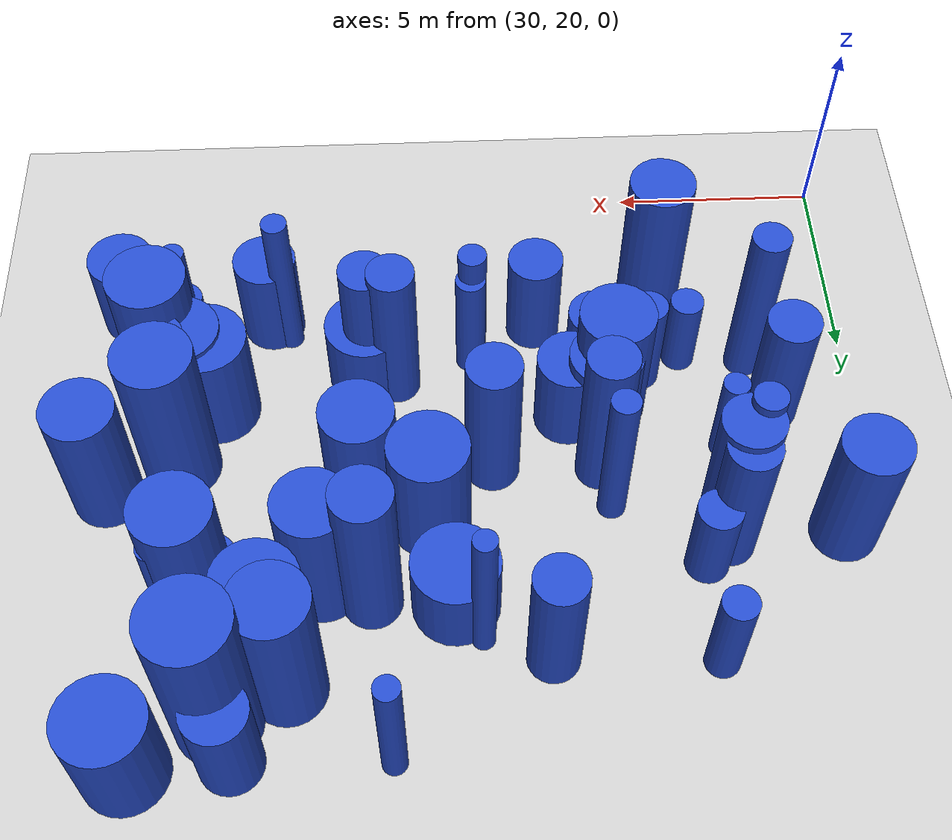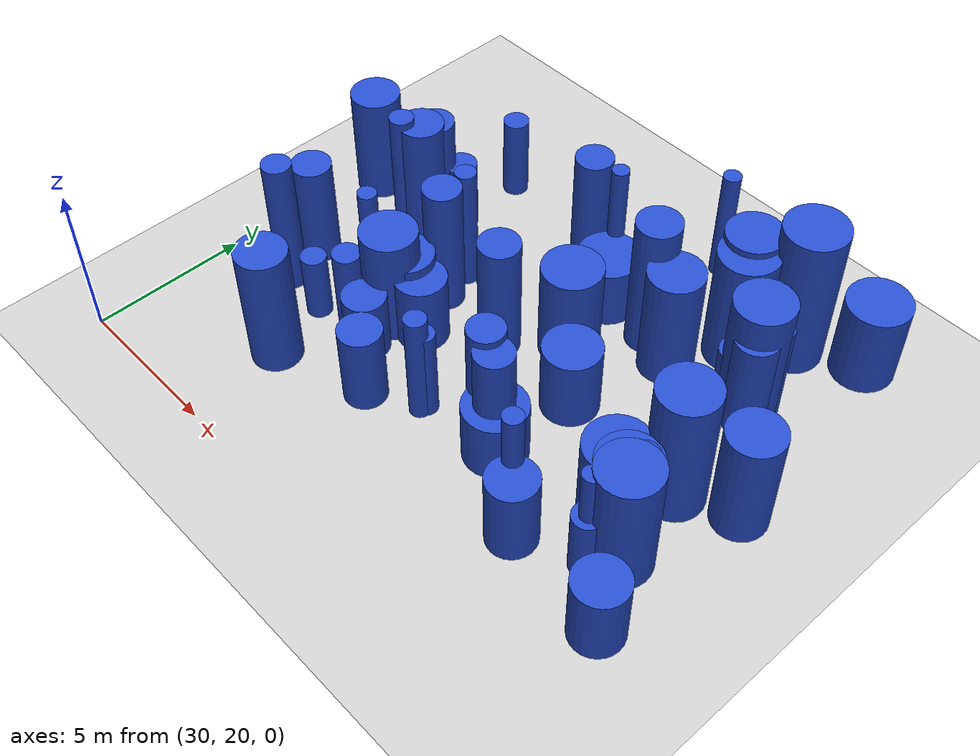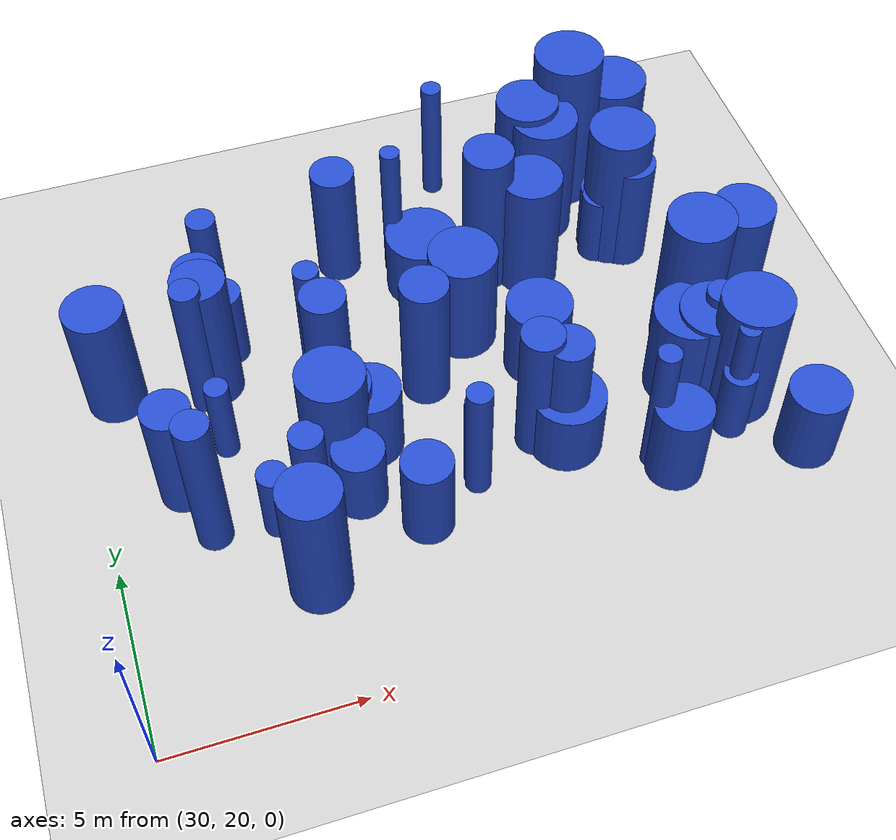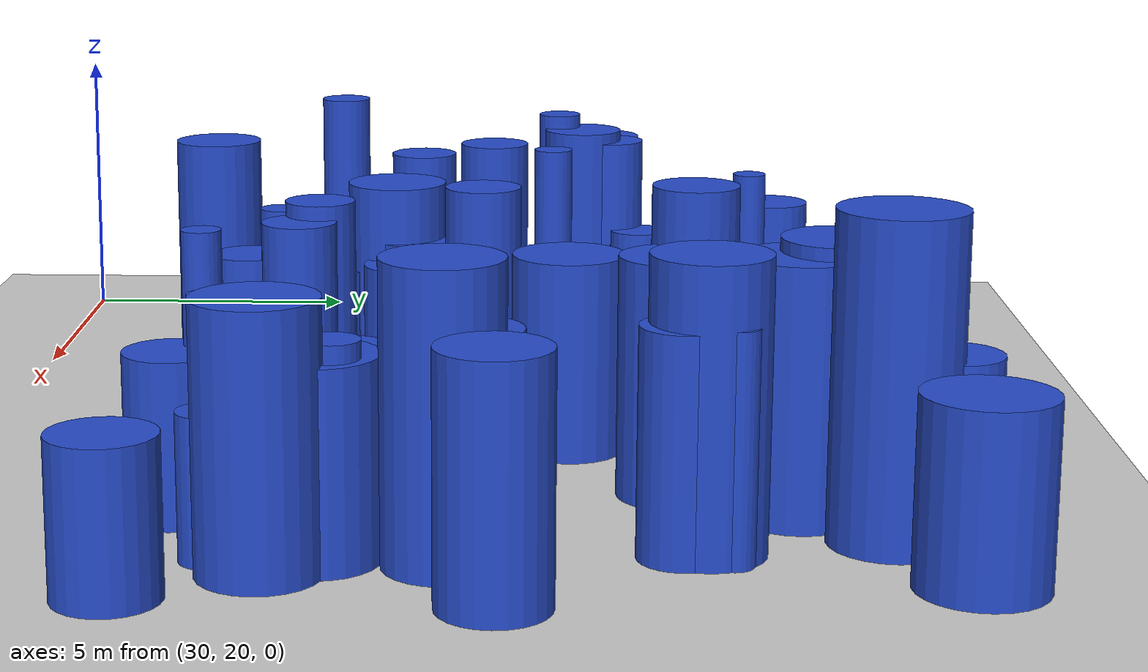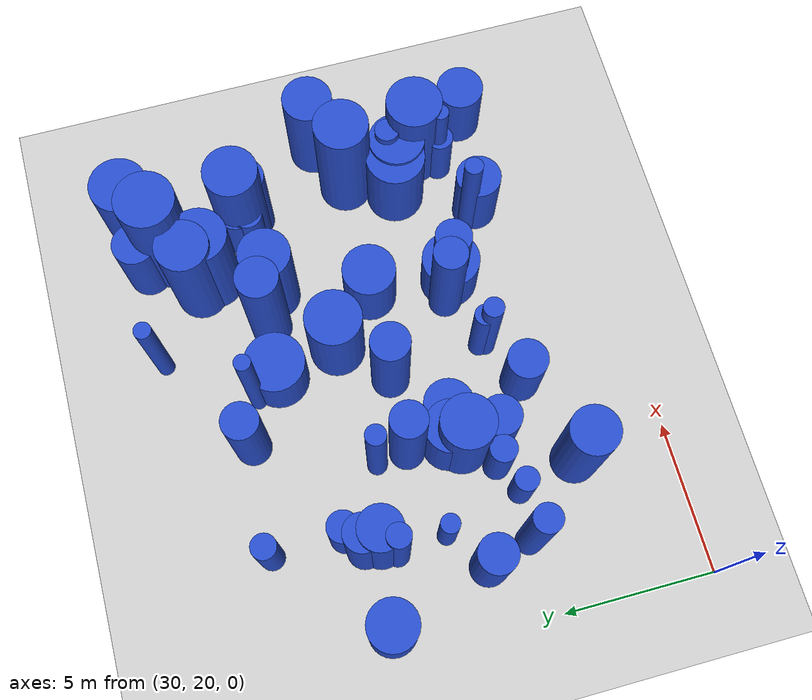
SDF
<sdf version="1.6">
 <world name="default">
  <model name="ground_plane">
   <static>1</static>
   <link name="link">
    <collision name="collision">
     <geometry><plane><normal>0 0 1</normal><size>100 100</size></plane></geometry>
     <surface><friction><ode><mu>100</mu><mu2>50</mu2></ode></friction></surface>
    </collision>
    <visual name="visual">
     <cast_shadows>0</cast_shadows>
     <geometry><plane><normal>0 0 1</normal><size>100 100</size></plane></geometry>
     <material>
      <script><uri>file://media/materials/scripts/gazebo.material</uri><name>Gazebo/Grey</name></script>
     </material>
    </visual>
   </link>
  </model>
  <model name="2">
   <static>0</static>
   <link name="link">
    <inertial>
     <mass>2</mass>
     <inertia><ixx>1.9179</ixx><ixy>0</ixy><ixz>0</ixz><iyy>1.9179</iyy><iyz>0</iyz><izz>0.974837</izz></inertia>
    </inertial>
    <collision name="collision">
     <geometry><cylinder><length>2.92966</length><radius>0.987338</radius></cylinder></geometry>
     <surface><contact><collide_without_contact>1</collide_without_contact></contact></surface>
    </collision>
    <visual name="visual">
     <geometry><cylinder><length>2.92966</length><radius>0.987338</radius></cylinder></geometry>
     <material>
      <script><uri>file://media/materials/scripts/gazebo.material</uri><name>Gazebo/Blue</name></script>
     </material>
    </visual>
    <gravity>0</gravity>
   </link>
   <pose>45.4163 26.3645 1.46483 0 -0 0</pose>
  </model>
  <model name="8">
   <static>0</static>
   <link name="link">
    <inertial>
     <mass>2</mass>
     <inertia><ixx>3.23009</ixx><ixy>0</ixy><ixz>0</ixz><iyy>3.23009</iyy><iyz>0</iyz><izz>0.313267</izz></inertia>
    </inertial>
    <collision name="collision">
     <geometry><cylinder><length>4.29427</length><radius>0.559703</radius></cylinder></geometry>
     <surface><contact><collide_without_contact>1</collide_without_contact></contact></surface>
    </collision>
    <visual name="visual">
     <geometry><cylinder><length>4.29427</length><radius>0.559703</radius></cylinder></geometry>
     <material>
      <script><uri>file://media/materials/scripts/gazebo.material</uri><name>Gazebo/Blue</name></script>
     </material>
    </visual>
    <gravity>0</gravity>
   </link>
   <pose>41.0947 25.7566 2.14713 0 -0 0</pose>
  </model>
  <model name="13">
   <static>0</static>
   <link name="link">
    <inertial>
     <mass>2</mass>
     <inertia><ixx>2.5994</ixx><ixy>0</ixy><ixz>0</ixz><iyy>2.5994</iyy><iyz>0</iyz><izz>0.0800748</izz></inertia>
    </inertial>
    <collision name="collision">
     <geometry><cylinder><length>3.91869</length><radius>0.282975</radius></cylinder></geometry>
     <surface><contact><collide_without_contact>1</collide_without_contact></contact></surface>
    </collision>
    <visual name="visual">
     <geometry><cylinder><length>3.91869</length><radius>0.282975</radius></cylinder></geometry>
     <material>
      <script><uri>file://media/materials/scripts/gazebo.material</uri><name>Gazebo/Blue</name></script>
     </material>
    </visual>
    <gravity>0</gravity>
   </link>
   <pose>46.0991 24.6597 1.95935 0 -0 0</pose>
  </model>
  <model name="27">
   <static>0</static>
   <link name="link">
    <inertial>
     <mass>2</mass>
     <inertia><ixx>2.24556</ixx><ixy>0</ixy><ixz>0</ixz><iyy>2.24556</iyy><iyz>0</iyz><izz>0.865007</izz></inertia>
    </inertial>
    <collision name="collision">
     <geometry><cylinder><length>3.29823</length><radius>0.930057</radius></cylinder></geometry>
     <surface><contact><collide_without_contact>1</collide_without_contact></contact></surface>
    </collision>
    <visual name="visual">
     <geometry><cylinder><length>3.29823</length><radius>0.930057</radius></cylinder></geometry>
     <material>
      <script><uri>file://media/materials/scripts/gazebo.material</uri><name>Gazebo/Blue</name></script>
     </material>
    </visual>
    <gravity>0</gravity>
   </link>
   <pose>40.362 29.7446 1.64912 0 -0 0</pose>
  </model>
  <model name="31">
   <static>0</static>
   <link name="link">
    <inertial>
     <mass>2</mass>
     <inertia><ixx>2.46305</ixx><ixy>0</ixy><ixz>0</ixz><iyy>2.46305</iyy><iyz>0</iyz><izz>0.114316</izz></inertia>
    </inertial>
    <collision name="collision">
     <geometry><cylinder><length>3.79939</length><radius>0.338106</radius></cylinder></geometry>
     <surface><contact><collide_without_contact>1</collide_without_contact></contact></surface>
    </collision>
    <visual name="visual">
     <geometry><cylinder><length>3.79939</length><radius>0.338106</radius></cylinder></geometry>
     <material>
      <script><uri>file://media/materials/scripts/gazebo.material</uri><name>Gazebo/Blue</name></script>
     </material>
    </visual>
    <gravity>0</gravity>
   </link>
   <pose>39.2114 24.8963 1.89969 0 -0 0</pose>
  </model>
  <model name="49">
   <static>0</static>
   <link name="link">
    <inertial>
     <mass>2</mass>
     <inertia><ixx>1.4206</ixx><ixy>0</ixy><ixz>0</ixz><iyy>1.4206</iyy><iyz>0</iyz><izz>0.438407</izz></inertia>
    </inertial>
    <collision name="collision">
     <geometry><cylinder><length>2.68485</length><radius>0.662123</radius></cylinder></geometry>
     <surface><contact><collide_without_contact>1</collide_without_contact></contact></surface>
    </collision>
    <visual name="visual">
     <geometry><cylinder><length>2.68485</length><radius>0.662123</radius></cylinder></geometry>
     <material>
      <script><uri>file://media/materials/scripts/gazebo.material</uri><name>Gazebo/Blue</name></script>
     </material>
    </visual>
    <gravity>0</gravity>
   </link>
   <pose>37.6585 24.1439 1.34242 0 -0 0</pose>
  </model>
  <model name="50">
   <static>0</static>
   <link name="link">
    <inertial>
     <mass>2</mass>
     <inertia><ixx>3.40213</ixx><ixy>0</ixy><ixz>0</ixz><iyy>3.40213</iyy><iyz>0</iyz><izz>0.758243</izz></inertia>
    </inertial>
    <collision name="collision">
     <geometry><cylinder><length>4.25888</length><radius>0.870771</radius></cylinder></geometry>
     <surface><contact><collide_without_contact>1</collide_without_contact></contact></surface>
    </collision>
    <visual name="visual">
     <geometry><cylinder><length>4.25888</length><radius>0.870771</radius></cylinder></geometry>
     <material>
      <script><uri>file://media/materials/scripts/gazebo.material</uri><name>Gazebo/Blue</name></script>
     </material>
    </visual>
    <gravity>0</gravity>
   </link>
   <pose>43.5227 33.7385 2.12944 0 -0 0</pose>
  </model>
  <model name="61">
   <static>0</static>
   <link name="link">
    <inertial>
     <mass>2</mass>
     <inertia><ixx>1.26514</ixx><ixy>0</ixy><ixz>0</ixz><iyy>1.26514</iyy><iyz>0</iyz><izz>0.651756</izz></inertia>
    </inertial>
    <collision name="collision">
     <geometry><cylinder><length>2.37394</length><radius>0.807314</radius></cylinder></geometry>
     <surface><contact><collide_without_contact>1</collide_without_contact></contact></surface>
    </collision>
    <visual name="visual">
     <geometry><cylinder><length>2.37394</length><radius>0.807314</radius></cylinder></geometry>
     <material>
      <script><uri>file://media/materials/scripts/gazebo.material</uri><name>Gazebo/Blue</name></script>
     </material>
    </visual>
    <gravity>0</gravity>
   </link>
   <pose>36.9963 26.9063 1.18697 0 -0 0</pose>
  </model>
  <model name="62">
   <static>0</static>
   <link name="link">
    <inertial>
     <mass>2</mass>
     <inertia><ixx>4.60937</ixx><ixy>0</ixy><ixz>0</ixz><iyy>4.60937</iyy><iyz>0</iyz><izz>0.935499</izz></inertia>
    </inertial>
    <collision name="collision">
     <geometry><cylinder><length>4.98495</length><radius>0.967212</radius></cylinder></geometry>
     <surface><contact><collide_without_contact>1</collide_without_contact></contact></surface>
    </collision>
    <visual name="visual">
     <geometry><cylinder><length>4.98495</length><radius>0.967212</radius></cylinder></geometry>
     <material>
      <script><uri>file://media/materials/scripts/gazebo.material</uri><name>Gazebo/Blue</name></script>
     </material>
    </visual>
    <gravity>0</gravity>
   </link>
   <pose>44.9759 34.4635 2.49248 0 -0 0</pose>
  </model>
  <model name="68">
   <static>0</static>
   <link name="link">
    <inertial>
     <mass>2</mass>
     <inertia>
      <ixx>3.19713</ixx>
      <ixy>0</ixy>
      <ixz>0</ixz>
      <iyy>3.19713</iyy>
      <iyz>0</iyz>
      <izz>0.0925744</izz>
     </inertia>
    </inertial>
    <collision name="collision">
     <geometry><cylinder><length>4.34799</length><radius>0.30426</radius></cylinder></geometry>
     <surface><contact><collide_without_contact>1</collide_without_contact></contact></surface>
    </collision>
    <visual name="visual">
     <geometry><cylinder><length>4.34799</length><radius>0.30426</radius></cylinder></geometry>
     <material>
      <script><uri>file://media/materials/scripts/gazebo.material</uri><name>Gazebo/Blue</name></script>
     </material>
    </visual>
    <gravity>0</gravity>
   </link>
   <pose>43.7363 24.2398 2.174 0 -0 0</pose>
  </model>
  <model name="69">
   <static>0</static>
   <link name="link">
    <inertial>
     <mass>2</mass>
     <inertia>
      <ixx>3.33102</ixx>
      <ixy>0</ixy>
      <ixz>0</ixz>
      <iyy>3.33102</iyy>
      <iyz>0</iyz>
      <izz>0.0721919</izz>
     </inertia>
    </inertial>
    <collision name="collision">
     <geometry><cylinder><length>4.4463</length><radius>0.268686</radius></cylinder></geometry>
     <surface><contact><collide_without_contact>1</collide_without_contact></contact></surface>
    </collision>
    <visual name="visual">
     <geometry><cylinder><length>4.4463</length><radius>0.268686</radius></cylinder></geometry>
     <material>
      <script><uri>file://media/materials/scripts/gazebo.material</uri><name>Gazebo/Blue</name></script>
     </material>
    </visual>
    <gravity>0</gravity>
   </link>
   <pose>39.2791 32.7325 2.22315 0 -0 0</pose>
  </model>
  <model name="78">
   <static>0</static>
   <link name="link">
    <inertial>
     <mass>2</mass>
     <inertia><ixx>1.37906</ixx><ixy>0</ixy><ixz>0</ixz><iyy>1.37906</iyy><iyz>0</iyz><izz>0.787408</izz></inertia>
    </inertial>
    <collision name="collision">
     <geometry><cylinder><length>2.43149</length><radius>0.88736</radius></cylinder></geometry>
     <surface><contact><collide_without_contact>1</collide_without_contact></contact></surface>
    </collision>
    <visual name="visual">
     <geometry><cylinder><length>2.43149</length><radius>0.88736</radius></cylinder></geometry>
     <material>
      <script><uri>file://media/materials/scripts/gazebo.material</uri><name>Gazebo/Blue</name></script>
     </material>
    </visual>
    <gravity>0</gravity>
   </link>
   <pose>41.9661 28.1877 1.21574 0 -0 0</pose>
  </model>
  <model name="83">
   <static>0</static>
   <link name="link">
    <inertial>
     <mass>2</mass>
     <inertia>
      <ixx>1.18192</ixx>
      <ixy>0</ixy>
      <ixz>0</ixz>
      <iyy>1.18192</iyy>
      <iyz>0</iyz>
      <izz>0.0996263</izz>
     </inertia>
    </inertial>
    <collision name="collision">
     <geometry><cylinder><length>2.60627</length><radius>0.315636</radius></cylinder></geometry>
     <surface><contact><collide_without_contact>1</collide_without_contact></contact></surface>
    </collision>
    <visual name="visual">
     <geometry><cylinder><length>2.60627</length><radius>0.315636</radius></cylinder></geometry>
     <material>
      <script><uri>file://media/materials/scripts/gazebo.material</uri><name>Gazebo/Blue</name></script>
     </material>
    </visual>
    <gravity>0</gravity>
   </link>
   <pose>33.3435 27.9145 1.30313 0 -0 0</pose>
  </model>
  <model name="92">
   <static>0</static>
   <link name="link">
    <inertial>
     <mass>2</mass>
     <inertia><ixx>1.69072</ixx><ixy>0</ixy><ixz>0</ixz><iyy>1.69072</iyy><iyz>0</iyz><izz>0.127981</izz></inertia>
    </inertial>
    <collision name="collision">
     <geometry><cylinder><length>3.12416</length><radius>0.357744</radius></cylinder></geometry>
     <surface><contact><collide_without_contact>1</collide_without_contact></contact></surface>
    </collision>
    <visual name="visual">
     <geometry><cylinder><length>3.12416</length><radius>0.357744</radius></cylinder></geometry>
     <material>
      <script><uri>file://media/materials/scripts/gazebo.material</uri><name>Gazebo/Blue</name></script>
     </material>
    </visual>
    <gravity>0</gravity>
   </link>
   <pose>39.2593 25.0883 1.56208 0 -0 0</pose>
  </model>
  <model name="97">
   <static>0</static>
   <link name="link">
    <inertial>
     <mass>2</mass>
     <inertia><ixx>2.78191</ixx><ixy>0</ixy><ixz>0</ixz><iyy>2.78191</iyy><iyz>0</iyz><izz>0.727916</izz></inertia>
    </inertial>
    <collision name="collision">
     <geometry><cylinder><length>3.8089</length><radius>0.85318</radius></cylinder></geometry>
     <surface><contact><collide_without_contact>1</collide_without_contact></contact></surface>
    </collision>
    <visual name="visual">
     <geometry><cylinder><length>3.8089</length><radius>0.85318</radius></cylinder></geometry>
     <material>
      <script><uri>file://media/materials/scripts/gazebo.material</uri><name>Gazebo/Blue</name></script>
     </material>
    </visual>
    <gravity>0</gravity>
   </link>
   <pose>42.8043 31.3367 1.90445 0 -0 0</pose>
  </model>
  <model name="100">
   <static>0</static>
   <link name="link">
    <inertial>
     <mass>2</mass>
     <inertia><ixx>3.16988</ixx><ixy>0</ixy><ixz>0</ixz><iyy>3.16988</iyy><iyz>0</iyz><izz>0.863339</izz></inertia>
    </inertial>
    <collision name="collision">
     <geometry><cylinder><length>4.0533</length><radius>0.92916</radius></cylinder></geometry>
     <surface><contact><collide_without_contact>1</collide_without_contact></contact></surface>
    </collision>
    <visual name="visual">
     <geometry><cylinder><length>4.0533</length><radius>0.92916</radius></cylinder></geometry>
     <material>
      <script><uri>file://media/materials/scripts/gazebo.material</uri><name>Gazebo/Blue</name></script>
     </material>
    </visual>
    <gravity>0</gravity>
   </link>
   <pose>43.8295 33.189 2.02665 0 -0 0</pose>
  </model>
  <model name="110">
   <static>0</static>
   <link name="link">
    <inertial>
     <mass>2</mass>
     <inertia>
      <ixx>0.975709</ixx>
      <ixy>0</ixy>
      <ixz>0</ixz>
      <iyy>0.975709</iyy>
      <iyz>0</iyz>
      <izz>0.463209</izz>
     </inertia>
    </inertial>
    <collision name="collision">
     <geometry><cylinder><length>2.11297</length><radius>0.680595</radius></cylinder></geometry>
     <surface><contact><collide_without_contact>1</collide_without_contact></contact></surface>
    </collision>
    <visual name="visual">
     <geometry><cylinder><length>2.11297</length><radius>0.680595</radius></cylinder></geometry>
     <material>
      <script><uri>file://media/materials/scripts/gazebo.material</uri><name>Gazebo/Blue</name></script>
     </material>
    </visual>
    <gravity>0</gravity>
   </link>
   <pose>36.2589 25.3789 1.05648 0 -0 0</pose>
  </model>
  <model name="122">
   <static>0</static>
   <link name="link">
    <inertial>
     <mass>2</mass>
     <inertia><ixx>1.78541</ixx><ixy>0</ixy><ixz>0</ixz><iyy>1.78541</iyy><iyz>0</iyz><izz>0.954322</izz></inertia>
    </inertial>
    <collision name="collision">
     <geometry><cylinder><length>2.8017</length><radius>0.976894</radius></cylinder></geometry>
     <surface><contact><collide_without_contact>1</collide_without_contact></contact></surface>
    </collision>
    <visual name="visual">
     <geometry><cylinder><length>2.8017</length><radius>0.976894</radius></cylinder></geometry>
     <material>
      <script><uri>file://media/materials/scripts/gazebo.material</uri><name>Gazebo/Blue</name></script>
     </material>
    </visual>
    <gravity>0</gravity>
   </link>
   <pose>46.8718 35.4481 1.40085 0 -0 0</pose>
  </model>
  <model name="168">
   <static>0</static>
   <link name="link">
    <inertial>
     <mass>2</mass>
     <inertia><ixx>2.93272</ixx><ixy>0</ixy><ixz>0</ixz><iyy>2.93272</iyy><iyz>0</iyz><izz>0.354754</izz></inertia>
    </inertial>
    <collision name="collision">
     <geometry><cylinder><length>4.06596</length><radius>0.595613</radius></cylinder></geometry>
     <surface><contact><collide_without_contact>1</collide_without_contact></contact></surface>
    </collision>
    <visual name="visual">
     <geometry><cylinder><length>4.06596</length><radius>0.595613</radius></cylinder></geometry>
     <material>
      <script><uri>file://media/materials/scripts/gazebo.material</uri><name>Gazebo/Blue</name></script>
     </material>
    </visual>
    <gravity>0</gravity>
   </link>
   <pose>41.704 25.48 2.03298 0 -0 0</pose>
  </model>
  <model name="188">
   <static>0</static>
   <link name="link">
    <inertial>
     <mass>2</mass>
     <inertia><ixx>2.07768</ixx><ixy>0</ixy><ixz>0</ixz><iyy>2.07768</iyy><iyz>0</iyz><izz>0.104098</izz></inertia>
    </inertial>
    <collision name="collision">
     <geometry><cylinder><length>3.48623</length><radius>0.322642</radius></cylinder></geometry>
     <surface><contact><collide_without_contact>1</collide_without_contact></contact></surface>
    </collision>
    <visual name="visual">
     <geometry><cylinder><length>3.48623</length><radius>0.322642</radius></cylinder></geometry>
     <material>
      <script><uri>file://media/materials/scripts/gazebo.material</uri><name>Gazebo/Blue</name></script>
     </material>
    </visual>
    <gravity>0</gravity>
   </link>
   <pose>46.0382 32.0862 1.74311 0 -0 0</pose>
  </model>
  <model name="209">
   <static>0</static>
   <link name="link">
    <inertial>
     <mass>2</mass>
     <inertia><ixx>3.66777</ixx><ixy>0</ixy><ixz>0</ixz><iyy>3.66777</iyy><iyz>0</iyz><izz>0.792332</izz></inertia>
    </inertial>
    <collision name="collision">
     <geometry><cylinder><length>4.43054</length><radius>0.890131</radius></cylinder></geometry>
     <surface><contact><collide_without_contact>1</collide_without_contact></contact></surface>
    </collision>
    <visual name="visual">
     <geometry><cylinder><length>4.43054</length><radius>0.890131</radius></cylinder></geometry>
     <material>
      <script><uri>file://media/materials/scripts/gazebo.material</uri><name>Gazebo/Blue</name></script>
     </material>
    </visual>
    <gravity>0</gravity>
   </link>
   <pose>45.5248 31.7344 2.21527 0 -0 0</pose>
  </model>
  <model name="210">
   <static>0</static>
   <link name="link">
    <inertial>
     <mass>2</mass>
     <inertia><ixx>2.45701</ixx><ixy>0</ixy><ixz>0</ixz><iyy>2.45701</iyy><iyz>0</iyz><izz>0.364356</izz></inertia>
    </inertial>
    <collision name="collision">
     <geometry><cylinder><length>3.69446</length><radius>0.603619</radius></cylinder></geometry>
     <surface><contact><collide_without_contact>1</collide_without_contact></contact></surface>
    </collision>
    <visual name="visual">
     <geometry><cylinder><length>3.69446</length><radius>0.603619</radius></cylinder></geometry>
     <material>
      <script><uri>file://media/materials/scripts/gazebo.material</uri><name>Gazebo/Blue</name></script>
     </material>
    </visual>
    <gravity>0</gravity>
   </link>
   <pose>37.7773 33.2498 1.84723 0 -0 0</pose>
  </model>
  <model name="244">
   <static>0</static>
   <link name="link">
    <inertial>
     <mass>2</mass>
     <inertia>
      <ixx>0.921875</ixx>
      <ixy>0</ixy>
      <ixz>0</ixz>
      <iyy>0.921875</iyy>
      <iyz>0</iyz>
      <izz>0.158917</izz>
     </inertia>
    </inertial>
    <collision name="collision">
     <geometry><cylinder><length>2.24822</length><radius>0.398644</radius></cylinder></geometry>
     <surface><contact><collide_without_contact>1</collide_without_contact></contact></surface>
    </collision>
    <visual name="visual">
     <geometry><cylinder><length>2.24822</length><radius>0.398644</radius></cylinder></geometry>
     <material>
      <script><uri>file://media/materials/scripts/gazebo.material</uri><name>Gazebo/Blue</name></script>
     </material>
    </visual>
    <gravity>0</gravity>
   </link>
   <pose>34.0968 25.2308 1.12411 0 -0 0</pose>
  </model>
  <model name="250">
   <static>0</static>
   <link name="link">
    <inertial>
     <mass>2</mass>
     <inertia><ixx>2.93702</ixx><ixy>0</ixy><ixz>0</ixz><iyy>2.93702</iyy><iyz>0</iyz><izz>0.364048</izz></inertia>
    </inertial>
    <collision name="collision">
     <geometry><cylinder><length>4.06571</length><radius>0.603364</radius></cylinder></geometry>
     <surface><contact><collide_without_contact>1</collide_without_contact></contact></surface>
    </collision>
    <visual name="visual">
     <geometry><cylinder><length>4.06571</length><radius>0.603364</radius></cylinder></geometry>
     <material>
      <script><uri>file://media/materials/scripts/gazebo.material</uri><name>Gazebo/Blue</name></script>
     </material>
    </visual>
    <gravity>0</gravity>
   </link>
   <pose>33.5581 30.5528 2.03285 0 -0 0</pose>
  </model>
  <model name="252">
   <static>0</static>
   <link name="link">
    <inertial>
     <mass>2</mass>
     <inertia><ixx>3.04249</ixx><ixy>0</ixy><ixz>0</ixz><iyy>3.04249</iyy><iyz>0</iyz><izz>0.411583</izz></inertia>
    </inertial>
    <collision name="collision">
     <geometry><cylinder><length>4.12556</length><radius>0.641547</radius></cylinder></geometry>
     <surface><contact><collide_without_contact>1</collide_without_contact></contact></surface>
    </collision>
    <visual name="visual">
     <geometry><cylinder><length>4.12556</length><radius>0.641547</radius></cylinder></geometry>
     <material>
      <script><uri>file://media/materials/scripts/gazebo.material</uri><name>Gazebo/Blue</name></script>
     </material>
    </visual>
    <gravity>0</gravity>
   </link>
   <pose>38.8739 28.2944 2.06278 0 -0 0</pose>
  </model>
  <model name="253">
   <static>0</static>
   <link name="link">
    <inertial>
     <mass>2</mass>
     <inertia><ixx>1.54743</ixx><ixy>0</ixy><ixz>0</ixz><iyy>1.54743</iyy><iyz>0</iyz><izz>0.51445</izz></inertia>
    </inertial>
    <collision name="collision">
     <geometry><cylinder><length>2.7823</length><radius>0.717251</radius></cylinder></geometry>
     <surface><contact><collide_without_contact>1</collide_without_contact></contact></surface>
    </collision>
    <visual name="visual">
     <geometry><cylinder><length>2.7823</length><radius>0.717251</radius></cylinder></geometry>
     <material>
      <script><uri>file://media/materials/scripts/gazebo.material</uri><name>Gazebo/Blue</name></script>
     </material>
    </visual>
    <gravity>0</gravity>
   </link>
   <pose>44.6714 35.349 1.39115 0 -0 0</pose>
  </model>
  <model name="261">
   <static>0</static>
   <link name="link">
    <inertial>
     <mass>2</mass>
     <inertia><ixx>2.61685</ixx><ixy>0</ixy><ixz>0</ixz><iyy>2.61685</iyy><iyz>0</iyz><izz>0.624761</izz></inertia>
    </inertial>
    <collision name="collision">
     <geometry><cylinder><length>3.71844</length><radius>0.790418</radius></cylinder></geometry>
     <surface><contact><collide_without_contact>1</collide_without_contact></contact></surface>
    </collision>
    <visual name="visual">
     <geometry><cylinder><length>3.71844</length><radius>0.790418</radius></cylinder></geometry>
     <material>
      <script><uri>file://media/materials/scripts/gazebo.material</uri><name>Gazebo/Blue</name></script>
     </material>
    </visual>
    <gravity>0</gravity>
   </link>
   <pose>30.877 30.3683 1.85922 0 -0 0</pose>
  </model>
  <model name="264">
   <static>0</static>
   <link name="link">
    <inertial>
     <mass>2</mass>
     <inertia><ixx>1.58239</ixx><ixy>0</ixy><ixz>0</ixz><iyy>1.58239</iyy><iyz>0</iyz><izz>0.757749</izz></inertia>
    </inertial>
    <collision name="collision">
     <geometry><cylinder><length>2.6872</length><radius>0.870488</radius></cylinder></geometry>
     <surface><contact><collide_without_contact>1</collide_without_contact></contact></surface>
    </collision>
    <visual name="visual">
     <geometry><cylinder><length>2.6872</length><radius>0.870488</radius></cylinder></geometry>
     <material>
      <script><uri>file://media/materials/scripts/gazebo.material</uri><name>Gazebo/Blue</name></script>
     </material>
    </visual>
    <gravity>0</gravity>
   </link>
   <pose>36.2075 27.0473 1.3436 0 -0 0</pose>
  </model>
  <model name="290">
   <static>0</static>
   <link name="link">
    <inertial>
     <mass>2</mass>
     <inertia><ixx>1.14546</ixx><ixy>0</ixy><ixz>0</ixz><iyy>1.14546</iyy><iyz>0</iyz><izz>0.933292</izz></inertia>
    </inertial>
    <collision name="collision">
     <geometry><cylinder><length>2.01814</length><radius>0.96607</radius></cylinder></geometry>
     <surface><contact><collide_without_contact>1</collide_without_contact></contact></surface>
    </collision>
    <visual name="visual">
     <geometry><cylinder><length>2.01814</length><radius>0.96607</radius></cylinder></geometry>
     <material>
      <script><uri>file://media/materials/scripts/gazebo.material</uri><name>Gazebo/Blue</name></script>
     </material>
    </visual>
    <gravity>0</gravity>
   </link>
   <pose>41.7895 25.4345 1.00907 0 -0 0</pose>
  </model>
  <model name="291">
   <static>0</static>
   <link name="link">
    <inertial>
     <mass>2</mass>
     <inertia><ixx>2.19236</ixx><ixy>0</ixy><ixz>0</ixz><iyy>2.19236</iyy><iyz>0</iyz><izz>0.437695</izz></inertia>
    </inertial>
    <collision name="collision">
     <geometry><cylinder><length>3.44108</length><radius>0.661586</radius></cylinder></geometry>
     <surface><contact><collide_without_contact>1</collide_without_contact></contact></surface>
    </collision>
    <visual name="visual">
     <geometry><cylinder><length>3.44108</length><radius>0.661586</radius></cylinder></geometry>
     <material>
      <script><uri>file://media/materials/scripts/gazebo.material</uri><name>Gazebo/Blue</name></script>
     </material>
    </visual>
    <gravity>0</gravity>
   </link>
   <pose>45.7466 31.3636 1.72054 0 -0 0</pose>
  </model>
  <model name="304">
   <static>0</static>
   <link name="link">
    <inertial>
     <mass>2</mass>
     <inertia>
      <ixx>0.949604</ixx>
      <ixy>0</ixy>
      <ixz>0</ixz>
      <iyy>0.949604</iyy>
      <iyz>0</iyz>
      <izz>0.246468</izz>
     </inertia>
    </inertial>
    <collision name="collision">
     <geometry><cylinder><length>2.22671</length><radius>0.496456</radius></cylinder></geometry>
     <surface><contact><collide_without_contact>1</collide_without_contact></contact></surface>
    </collision>
    <visual name="visual">
     <geometry><cylinder><length>2.22671</length><radius>0.496456</radius></cylinder></geometry>
     <material>
      <script><uri>file://media/materials/scripts/gazebo.material</uri><name>Gazebo/Blue</name></script>
     </material>
    </visual>
    <gravity>0</gravity>
   </link>
   <pose>45.0012 31.5787 1.11335 0 -0 0</pose>
  </model>
  <model name="307">
   <static>0</static>
   <link name="link">
    <inertial>
     <mass>2</mass>
     <inertia><ixx>3.91329</ixx><ixy>0</ixy><ixz>0</ixz><iyy>3.91329</iyy><iyz>0</iyz><izz>0.47279</izz></inertia>
    </inertial>
    <collision name="collision">
     <geometry><cylinder><length>4.69695</length><radius>0.687597</radius></cylinder></geometry>
     <surface><contact><collide_without_contact>1</collide_without_contact></contact></surface>
    </collision>
    <visual name="visual">
     <geometry><cylinder><length>4.69695</length><radius>0.687597</radius></cylinder></geometry>
     <material>
      <script><uri>file://media/materials/scripts/gazebo.material</uri><name>Gazebo/Blue</name></script>
     </material>
    </visual>
    <gravity>0</gravity>
   </link>
   <pose>41.7121 31.7139 2.34848 0 -0 0</pose>
  </model>
  <model name="309">
   <static>0</static>
   <link name="link">
    <inertial>
     <mass>2</mass>
     <inertia><ixx>3.77715</ixx><ixy>0</ixy><ixz>0</ixz><iyy>3.77715</iyy><iyz>0</iyz><izz>0.824152</izz></inertia>
    </inertial>
    <collision name="collision">
     <geometry><cylinder><length>4.49338</length><radius>0.907828</radius></cylinder></geometry>
     <surface><contact><collide_without_contact>1</collide_without_contact></contact></surface>
    </collision>
    <visual name="visual">
     <geometry><cylinder><length>4.49338</length><radius>0.907828</radius></cylinder></geometry>
     <material>
      <script><uri>file://media/materials/scripts/gazebo.material</uri><name>Gazebo/Blue</name></script>
     </material>
    </visual>
    <gravity>0</gravity>
   </link>
   <pose>46.1942 27.9676 2.24669 0 -0 0</pose>
  </model>
  <model name="315">
   <static>0</static>
   <link name="link">
    <inertial>
     <mass>2</mass>
     <inertia><ixx>3.27513</ixx><ixy>0</ixy><ixz>0</ixz><iyy>3.27513</iyy><iyz>0</iyz><izz>0.503261</izz></inertia>
    </inertial>
    <collision name="collision">
     <geometry><cylinder><length>4.25923</length><radius>0.709409</radius></cylinder></geometry>
     <surface><contact><collide_without_contact>1</collide_without_contact></contact></surface>
    </collision>
    <visual name="visual">
     <geometry><cylinder><length>4.25923</length><radius>0.709409</radius></cylinder></geometry>
     <material>
      <script><uri>file://media/materials/scripts/gazebo.material</uri><name>Gazebo/Blue</name></script>
     </material>
    </visual>
    <gravity>0</gravity>
   </link>
   <pose>33.5266 30.023 2.12961 0 -0 0</pose>
  </model>
  <model name="332">
   <static>0</static>
   <link name="link">
    <inertial>
     <mass>2</mass>
     <inertia><ixx>2.63771</ixx><ixy>0</ixy><ixz>0</ixz><iyy>2.63771</iyy><iyz>0</iyz><izz>0.781718</izz></inertia>
    </inertial>
    <collision name="collision">
     <geometry><cylinder><length>3.67167</length><radius>0.884148</radius></cylinder></geometry>
     <surface><contact><collide_without_contact>1</collide_without_contact></contact></surface>
    </collision>
    <visual name="visual">
     <geometry><cylinder><length>3.67167</length><radius>0.884148</radius></cylinder></geometry>
     <material>
      <script><uri>file://media/materials/scripts/gazebo.material</uri><name>Gazebo/Blue</name></script>
     </material>
    </visual>
    <gravity>0</gravity>
   </link>
   <pose>35.9914 26.6404 1.83583 0 -0 0</pose>
  </model>
  <model name="335">
   <static>0</static>
   <link name="link">
    <inertial>
     <mass>2</mass>
     <inertia><ixx>1.11954</ixx><ixy>0</ixy><ixz>0</ixz><iyy>1.11954</iyy><iyz>0</iyz><izz>0.263524</izz></inertia>
    </inertial>
    <collision name="collision">
     <geometry><cylinder><length>2.43447</length><radius>0.513346</radius></cylinder></geometry>
     <surface><contact><collide_without_contact>1</collide_without_contact></contact></surface>
    </collision>
    <visual name="visual">
     <geometry><cylinder><length>2.43447</length><radius>0.513346</radius></cylinder></geometry>
     <material>
      <script><uri>file://media/materials/scripts/gazebo.material</uri><name>Gazebo/Blue</name></script>
     </material>
    </visual>
    <gravity>0</gravity>
   </link>
   <pose>34.1246 31.0647 1.21724 0 -0 0</pose>
  </model>
  <model name="336">
   <static>0</static>
   <link name="link">
    <inertial>
     <mass>2</mass>
     <inertia><ixx>1.2437</ixx><ixy>0</ixy><ixz>0</ixz><iyy>1.2437</iyy><iyz>0</iyz><izz>0.633636</izz></inertia>
    </inertial>
    <collision name="collision">
     <geometry><cylinder><length>2.35824</length><radius>0.796013</radius></cylinder></geometry>
     <surface><contact><collide_without_contact>1</collide_without_contact></contact></surface>
    </collision>
    <visual name="visual">
     <geometry><cylinder><length>2.35824</length><radius>0.796013</radius></cylinder></geometry>
     <material>
      <script><uri>file://media/materials/scripts/gazebo.material</uri><name>Gazebo/Blue</name></script>
     </material>
    </visual>
    <gravity>0</gravity>
   </link>
   <pose>47.6995 23.4381 1.17912 0 -0 0</pose>
  </model>
  <model name="340">
   <static>0</static>
   <link name="link">
    <inertial>
     <mass>2</mass>
     <inertia><ixx>3.11509</ixx><ixy>0</ixy><ixz>0</ixz><iyy>3.11509</iyy><iyz>0</iyz><izz>0.870534</izz></inertia>
    </inertial>
    <collision name="collision">
     <geometry><cylinder><length>4.00986</length><radius>0.933024</radius></cylinder></geometry>
     <surface><contact><collide_without_contact>1</collide_without_contact></contact></surface>
    </collision>
    <visual name="visual">
     <geometry><cylinder><length>4.00986</length><radius>0.933024</radius></cylinder></geometry>
     <material>
      <script><uri>file://media/materials/scripts/gazebo.material</uri><name>Gazebo/Blue</name></script>
     </material>
    </visual>
    <gravity>0</gravity>
   </link>
   <pose>46.6363 25.3987 2.00493 0 -0 0</pose>
  </model>
  <model name="345">
   <static>0</static>
   <link name="link">
    <inertial>
     <mass>2</mass>
     <inertia><ixx>3.47352</ixx><ixy>0</ixy><ixz>0</ixz><iyy>3.47352</iyy><iyz>0</iyz><izz>0.354515</izz></inertia>
    </inertial>
    <collision name="collision">
     <geometry><cylinder><length>4.4472</length><radius>0.595412</radius></cylinder></geometry>
     <surface><contact><collide_without_contact>1</collide_without_contact></contact></surface>
    </collision>
    <visual name="visual">
     <geometry><cylinder><length>4.4472</length><radius>0.595412</radius></cylinder></geometry>
     <material>
      <script><uri>file://media/materials/scripts/gazebo.material</uri><name>Gazebo/Blue</name></script>
     </material>
    </visual>
    <gravity>0</gravity>
   </link>
   <pose>36.3247 28.4169 2.2236 0 -0 0</pose>
  </model>
  <model name="351">
   <static>0</static>
   <link name="link">
    <inertial>
     <mass>2</mass>
     <inertia><ixx>1.00333</ixx><ixy>0</ixy><ixz>0</ixz><iyy>1.00333</iyy><iyz>0</iyz><izz>0.509305</izz></inertia>
    </inertial>
    <collision name="collision">
     <geometry><cylinder><length>2.11945</length><radius>0.713656</radius></cylinder></geometry>
     <surface><contact><collide_without_contact>1</collide_without_contact></contact></surface>
    </collision>
    <visual name="visual">
     <geometry><cylinder><length>2.11945</length><radius>0.713656</radius></cylinder></geometry>
     <material>
      <script><uri>file://media/materials/scripts/gazebo.material</uri><name>Gazebo/Blue</name></script>
     </material>
    </visual>
    <gravity>0</gravity>
   </link>
   <pose>45.3067 31.8866 1.05972 0 -0 0</pose>
  </model>
  <model name="395">
   <static>0</static>
   <link name="link">
    <inertial>
     <mass>2</mass>
     <inertia><ixx>1.9851</ixx><ixy>0</ixy><ixz>0</ixz><iyy>1.9851</iyy><iyz>0</iyz><izz>0.878505</izz></inertia>
    </inertial>
    <collision name="collision">
     <geometry><cylinder><length>3.0455</length><radius>0.937286</radius></cylinder></geometry>
     <surface><contact><collide_without_contact>1</collide_without_contact></contact></surface>
    </collision>
    <visual name="visual">
     <geometry><cylinder><length>3.0455</length><radius>0.937286</radius></cylinder></geometry>
     <material>
      <script><uri>file://media/materials/scripts/gazebo.material</uri><name>Gazebo/Blue</name></script>
     </material>
    </visual>
    <gravity>0</gravity>
   </link>
   <pose>45.9838 26.1628 1.52275 0 -0 0</pose>
  </model>
  <model name="406">
   <static>0</static>
   <link name="link">
    <inertial>
     <mass>2</mass>
     <inertia>
      <ixx>0.923849</ixx>
      <ixy>0</ixy>
      <ixz>0</ixz>
      <iyy>0.923849</iyy>
      <iyz>0</iyz>
      <izz>0.201714</izz>
     </inertia>
    </inertial>
    <collision name="collision">
     <geometry><cylinder><length>2.22215</length><radius>0.449126</radius></cylinder></geometry>
     <surface><contact><collide_without_contact>1</collide_without_contact></contact></surface>
    </collision>
    <visual name="visual">
     <geometry><cylinder><length>2.22215</length><radius>0.449126</radius></cylinder></geometry>
     <material>
      <script><uri>file://media/materials/scripts/gazebo.material</uri><name>Gazebo/Blue</name></script>
     </material>
    </visual>
    <gravity>0</gravity>
   </link>
   <pose>46.0954 24.6091 1.11107 0 -0 0</pose>
  </model>
  <model name="414">
   <static>0</static>
   <link name="link">
    <inertial>
     <mass>2</mass>
     <inertia><ixx>1.35783</ixx><ixy>0</ixy><ixz>0</ixz><iyy>1.35783</iyy><iyz>0</iyz><izz>0.197035</izz></inertia>
    </inertial>
    <collision name="collision">
     <geometry><cylinder><length>2.7488</length><radius>0.443886</radius></cylinder></geometry>
     <surface><contact><collide_without_contact>1</collide_without_contact></contact></surface>
    </collision>
    <visual name="visual">
     <geometry><cylinder><length>2.7488</length><radius>0.443886</radius></cylinder></geometry>
     <material>
      <script><uri>file://media/materials/scripts/gazebo.material</uri><name>Gazebo/Blue</name></script>
     </material>
    </visual>
    <gravity>0</gravity>
   </link>
   <pose>35.0951 25.7255 1.3744 0 -0 0</pose>
  </model>
  <model name="425">
   <static>0</static>
   <link name="link">
    <inertial>
     <mass>2</mass>
     <inertia><ixx>1.39965</ixx><ixy>0</ixy><ixz>0</ixz><iyy>1.39965</iyy><iyz>0</iyz><izz>0.167721</izz></inertia>
    </inertial>
    <collision name="collision">
     <geometry><cylinder><length>2.80976</length><radius>0.409538</radius></cylinder></geometry>
     <surface><contact><collide_without_contact>1</collide_without_contact></contact></surface>
    </collision>
    <visual name="visual">
     <geometry><cylinder><length>2.80976</length><radius>0.409538</radius></cylinder></geometry>
     <material>
      <script><uri>file://media/materials/scripts/gazebo.material</uri><name>Gazebo/Blue</name></script>
     </material>
    </visual>
    <gravity>0</gravity>
   </link>
   <pose>34.1052 33.4719 1.40488 0 -0 0</pose>
  </model>
  <model name="426">
   <static>0</static>
   <link name="link">
    <inertial>
     <mass>2</mass>
     <inertia><ixx>3.2456</ixx><ixy>0</ixy><ixz>0</ixz><iyy>3.2456</iyy><iyz>0</iyz><izz>0.615654</izz></inertia>
    </inertial>
    <collision name="collision">
     <geometry><cylinder><length>4.19841</length><radius>0.784636</radius></cylinder></geometry>
     <surface><contact><collide_without_contact>1</collide_without_contact></contact></surface>
    </collision>
    <visual name="visual">
     <geometry><cylinder><length>4.19841</length><radius>0.784636</radius></cylinder></geometry>
     <material>
      <script><uri>file://media/materials/scripts/gazebo.material</uri><name>Gazebo/Blue</name></script>
     </material>
    </visual>
    <gravity>0</gravity>
   </link>
   <pose>34.6484 23.2055 2.0992 0 -0 0</pose>
  </model>
  <model name="447">
   <static>0</static>
   <link name="link">
    <inertial>
     <mass>2</mass>
     <inertia><ixx>3.15765</ixx><ixy>0</ixy><ixz>0</ixz><iyy>3.15765</iyy><iyz>0</iyz><izz>0.112315</izz></inertia>
    </inertial>
    <collision name="collision">
     <geometry><cylinder><length>4.31381</length><radius>0.335134</radius></cylinder></geometry>
     <surface><contact><collide_without_contact>1</collide_without_contact></contact></surface>
    </collision>
    <visual name="visual">
     <geometry><cylinder><length>4.31381</length><radius>0.335134</radius></cylinder></geometry>
     <material>
      <script><uri>file://media/materials/scripts/gazebo.material</uri><name>Gazebo/Blue</name></script>
     </material>
    </visual>
    <gravity>0</gravity>
   </link>
   <pose>36.1573 29.4691 2.15691 0 -0 0</pose>
  </model>
  <model name="455">
   <static>0</static>
   <link name="link">
    <inertial>
     <mass>2</mass>
     <inertia><ixx>1.16758</ixx><ixy>0</ixy><ixz>0</ixz><iyy>1.16758</iyy><iyz>0</iyz><izz>0.997811</izz></inertia>
    </inertial>
    <collision name="collision">
     <geometry><cylinder><length>2.00301</length><radius>0.998905</radius></cylinder></geometry>
     <surface><contact><collide_without_contact>1</collide_without_contact></contact></surface>
    </collision>
    <visual name="visual">
     <geometry><cylinder><length>2.00301</length><radius>0.998905</radius></cylinder></geometry>
     <material>
      <script><uri>file://media/materials/scripts/gazebo.material</uri><name>Gazebo/Blue</name></script>
     </material>
    </visual>
    <gravity>0</gravity>
   </link>
   <pose>39.8515 31.8819 1.00151 0 -0 0</pose>
  </model>
  <model name="460">
   <static>0</static>
   <link name="link">
    <inertial>
     <mass>2</mass>
     <inertia><ixx>1.892</ixx><ixy>0</ixy><ixz>0</ixz><iyy>1.892</iyy><iyz>0</iyz><izz>0.119866</izz></inertia>
    </inertial>
    <collision name="collision">
     <geometry><cylinder><length>3.31548</length><radius>0.346217</radius></cylinder></geometry>
     <surface><contact><collide_without_contact>1</collide_without_contact></contact></surface>
    </collision>
    <visual name="visual">
     <geometry><cylinder><length>3.31548</length><radius>0.346217</radius></cylinder></geometry>
     <material>
      <script><uri>file://media/materials/scripts/gazebo.material</uri><name>Gazebo/Blue</name></script>
     </material>
    </visual>
    <gravity>0</gravity>
   </link>
   <pose>46.3596 25.1774 1.65774 0 -0 0</pose>
  </model>
  <model name="470">
   <static>0</static>
   <link name="link">
    <inertial>
     <mass>2</mass>
     <inertia><ixx>3.45096</ixx><ixy>0</ixy><ixz>0</ixz><iyy>3.45096</iyy><iyz>0</iyz><izz>0.148537</izz></inertia>
    </inertial>
    <collision name="collision">
     <geometry><cylinder><length>4.50113</length><radius>0.385406</radius></cylinder></geometry>
     <surface><contact><collide_without_contact>1</collide_without_contact></contact></surface>
    </collision>
    <visual name="visual">
     <geometry><cylinder><length>4.50113</length><radius>0.385406</radius></cylinder></geometry>
     <material>
      <script><uri>file://media/materials/scripts/gazebo.material</uri><name>Gazebo/Blue</name></script>
     </material>
    </visual>
    <gravity>0</gravity>
   </link>
   <pose>33.1493 29.5826 2.25056 0 -0 0</pose>
  </model>
  <model name="473">
   <static>0</static>
   <link name="link">
    <inertial>
     <mass>2</mass>
     <inertia><ixx>1.92054</ixx><ixy>0</ixy><ixz>0</ixz><iyy>1.92054</iyy><iyz>0</iyz><izz>0.168925</izz></inertia>
    </inertial>
    <collision name="collision">
     <geometry><cylinder><length>3.3191</length><radius>0.411005</radius></cylinder></geometry>
     <surface><contact><collide_without_contact>1</collide_without_contact></contact></surface>
    </collision>
    <visual name="visual">
     <geometry><cylinder><length>3.3191</length><radius>0.411005</radius></cylinder></geometry>
     <material>
      <script><uri>file://media/materials/scripts/gazebo.material</uri><name>Gazebo/Blue</name></script>
     </material>
    </visual>
    <gravity>0</gravity>
   </link>
   <pose>46.2454 26.4261 1.65955 0 -0 0</pose>
  </model>
  <model name="474">
   <static>0</static>
   <link name="link">
    <inertial>
     <mass>2</mass>
     <inertia><ixx>2.27407</ixx><ixy>0</ixy><ixz>0</ixz><iyy>2.27407</iyy><iyz>0</iyz><izz>0.392898</izz></inertia>
    </inertial>
    <collision name="collision">
     <geometry><cylinder><length>3.53068</length><radius>0.626816</radius></cylinder></geometry>
     <surface><contact><collide_without_contact>1</collide_without_contact></contact></surface>
    </collision>
    <visual name="visual">
     <geometry><cylinder><length>3.53068</length><radius>0.626816</radius></cylinder></geometry>
     <material>
      <script><uri>file://media/materials/scripts/gazebo.material</uri><name>Gazebo/Blue</name></script>
     </material>
    </visual>
    <gravity>0</gravity>
   </link>
   <pose>32.0228 26.903 1.76534 0 -0 0</pose>
  </model>
  <model name="476">
   <static>0</static>
   <link name="link">
    <inertial>
     <mass>2</mass>
     <inertia><ixx>2.5733</ixx><ixy>0</ixy><ixz>0</ixz><iyy>2.5733</iyy><iyz>0</iyz><izz>0.695825</izz></inertia>
    </inertial>
    <collision name="collision">
     <geometry><cylinder><length>3.65408</length><radius>0.834161</radius></cylinder></geometry>
     <surface><contact><collide_without_contact>1</collide_without_contact></contact></surface>
    </collision>
    <visual name="visual">
     <geometry><cylinder><length>3.65408</length><radius>0.834161</radius></cylinder></geometry>
     <material>
      <script><uri>file://media/materials/scripts/gazebo.material</uri><name>Gazebo/Blue</name></script>
     </material>
    </visual>
    <gravity>0</gravity>
   </link>
   <pose>47.8707 28.7298 1.82704 0 -0 0</pose>
  </model>
  <model name="479">
   <static>0</static>
   <link name="link">
    <inertial>
     <mass>2</mass>
     <inertia>
      <ixx>2.51952</ixx>
      <ixy>0</ixy>
      <ixz>0</ixz>
      <iyy>2.51952</iyy>
      <iyz>0</iyz>
      <izz>0.0808684</izz>
     </inertia>
    </inertial>
    <collision name="collision">
     <geometry><cylinder><length>3.85675</length><radius>0.284374</radius></cylinder></geometry>
     <surface><contact><collide_without_contact>1</collide_without_contact></contact></surface>
    </collision>
    <visual name="visual">
     <geometry><cylinder><length>3.85675</length><radius>0.284374</radius></cylinder></geometry>
     <material>
      <script><uri>file://media/materials/scripts/gazebo.material</uri><name>Gazebo/Blue</name></script>
     </material>
    </visual>
    <gravity>0</gravity>
   </link>
   <pose>41.264 35.4805 1.92837 0 -0 0</pose>
  </model>
  <model name="484">
   <static>0</static>
   <link name="link">
    <inertial>
     <mass>2</mass>
     <inertia><ixx>3.76294</ixx><ixy>0</ixy><ixz>0</ixz><iyy>3.76294</iyy><iyz>0</iyz><izz>0.206874</izz></inertia>
    </inertial>
    <collision name="collision">
     <geometry><cylinder><length>4.68583</length><radius>0.454834</radius></cylinder></geometry>
     <surface><contact><collide_without_contact>1</collide_without_contact></contact></surface>
    </collision>
    <visual name="visual">
     <geometry><cylinder><length>4.68583</length><radius>0.454834</radius></cylinder></geometry>
     <material>
      <script><uri>file://media/materials/scripts/gazebo.material</uri><name>Gazebo/Blue</name></script>
     </material>
    </visual>
    <gravity>0</gravity>
   </link>
   <pose>32.4961 25.4089 2.34292 0 -0 0</pose>
  </model>
  <model name="488">
   <static>0</static>
   <link name="link">
    <inertial>
     <mass>2</mass>
     <inertia><ixx>1.40344</ixx><ixy>0</ixy><ixz>0</ixz><iyy>1.40344</iyy><iyz>0</iyz><izz>0.569713</izz></inertia>
    </inertial>
    <collision name="collision">
     <geometry><cylinder><length>2.59066</length><radius>0.754794</radius></cylinder></geometry>
     <surface><contact><collide_without_contact>1</collide_without_contact></contact></surface>
    </collision>
    <visual name="visual">
     <geometry><cylinder><length>2.59066</length><radius>0.754794</radius></cylinder></geometry>
     <material>
      <script><uri>file://media/materials/scripts/gazebo.material</uri><name>Gazebo/Blue</name></script>
     </material>
    </visual>
    <gravity>0</gravity>
   </link>
   <pose>44.1717 23.8217 1.29533 0 -0 0</pose>
  </model>
 </world>
</sdf>
